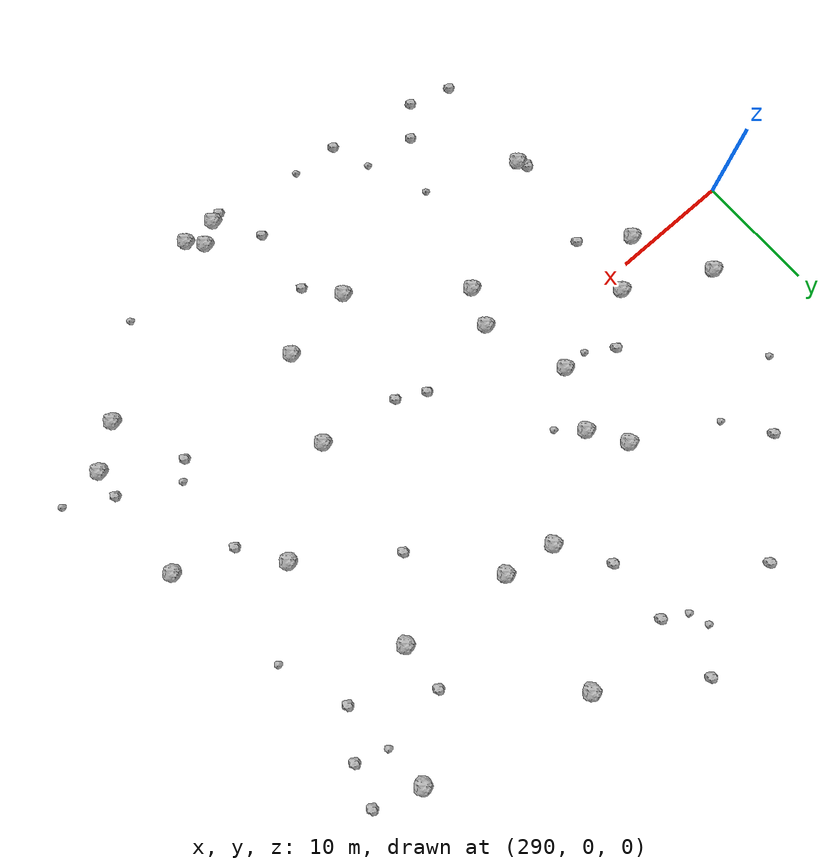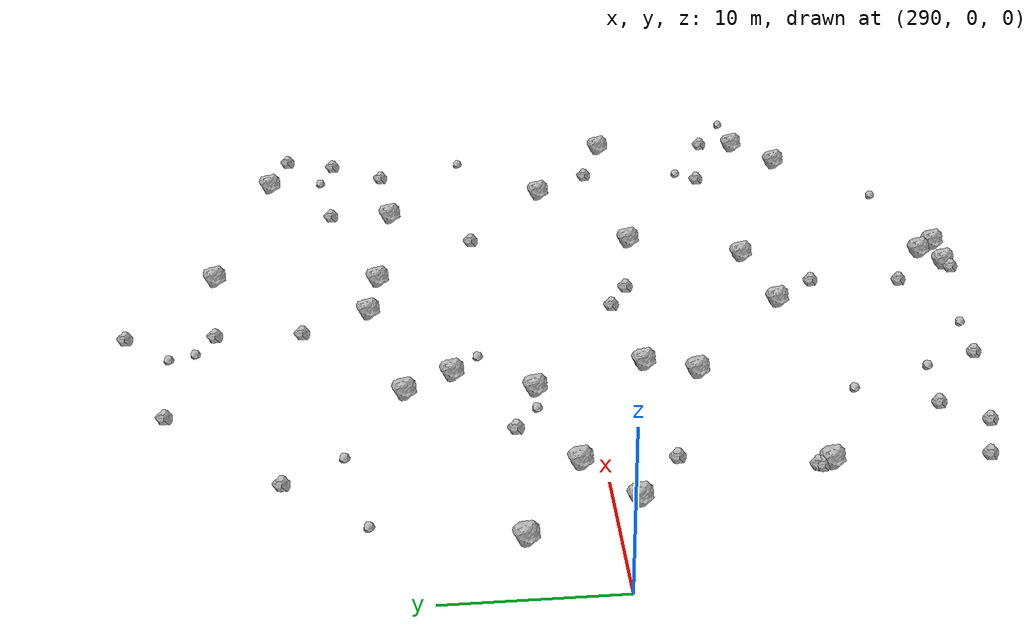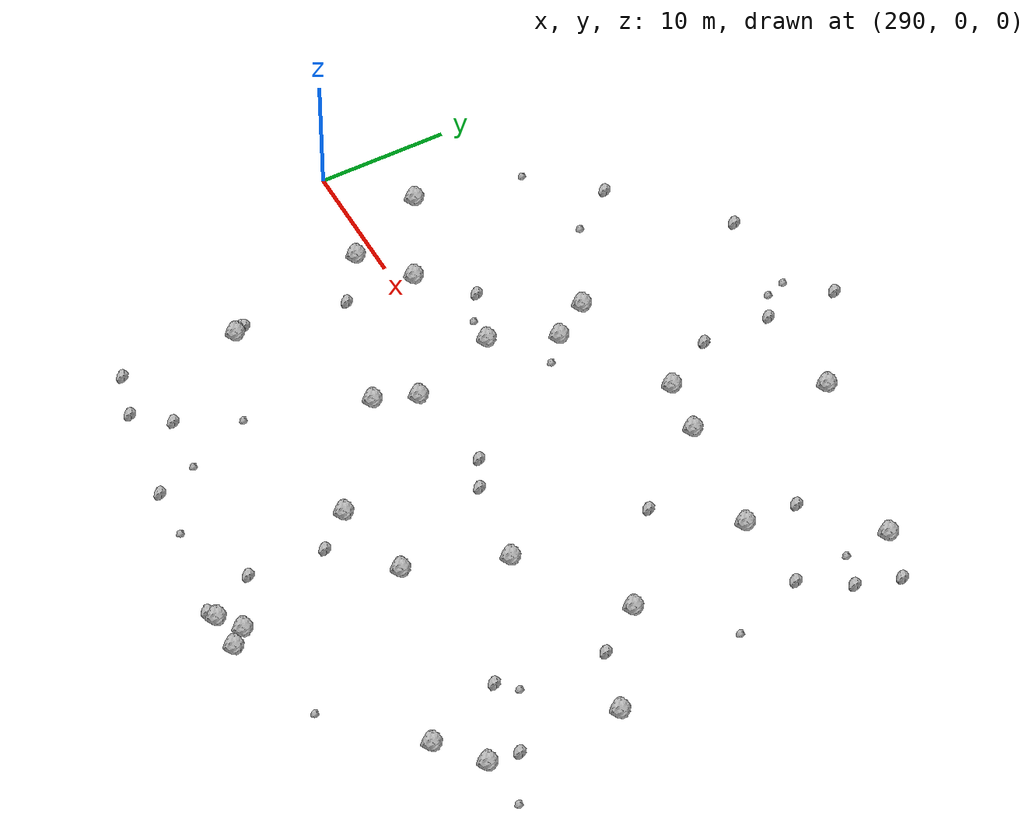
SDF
<sdf version="1.6">
 <world name="default">
  <include><uri>model://sun</uri></include>
  <model name="rock1_8_3">
   <include><uri>model://rock1</uri><pose>325.1915038183015 22.888082743973996 0.5 0 0 0</pose></include>
  </model>
  <model name="rock1_8_4">
   <include><uri>model://rock1</uri><pose>338.830382243131 19.729915822019557 0.5 0 0 0</pose></include>
  </model>
  <model name="rock1_8_5">
   <include><uri>model://rock1</uri><pose>312.05545087012746 8.094520764630225 0.5 0 0 0</pose></include>
  </model>
  <model name="rock1_8_6">
   <include><uri>model://rock1</uri><pose>336.0433704368544 0.8171400967337625 0.5 0 0 0</pose></include>
  </model>
  <model name="rock1_8_7">
   <include><uri>model://rock1</uri><pose>311.00896282621454 -6.6177755214381975 0.5 0 0 0</pose></include>
  </model>
  <model name="rock1_8_8">
   <include><uri>model://rock1</uri><pose>295.1191280224322 5.026669832028517 0.5 0 0 0</pose></include>
  </model>
  <model name="rock1_8_9">
   <include><uri>model://rock1</uri><pose>309.8459335343695 3.282439257857405 0.5 0 0 0</pose></include>
  </model>
  <model name="rock1_8_10">
   <include><uri>model://rock1</uri><pose>319.16483023443936 -13.060941604001616 0.5 0 0 0</pose></include>
  </model>
  <model name="rock1_8_11">
   <include><uri>model://rock1</uri><pose>325.5148616328047 -11.84580621359958 0.5 0 0 0</pose></include>
  </model>
  <model name="rock1_8_12">
   <include><uri>model://rock1</uri><pose>326.01978969670904 -24.980631585781303 0.5 0 0 0</pose></include>
  </model>
  <model name="rock1_8_13">
   <include><uri>model://rock1</uri><pose>300.7069691777286 -12.560123126250286 0.5 0 0 0</pose></include>
  </model>
  <model name="rock1_8_14">
   <include><uri>model://rock1</uri><pose>343.2188992653833 -4.244354372242022 0.5 0 0 0</pose></include>
  </model>
  <model name="rock1_8_15">
   <include><uri>model://rock1</uri><pose>324.2170372052479 12.334304809737674 0.5 0 0 0</pose></include>
  </model>
  <model name="rock1_8_16">
   <include><uri>model://rock1</uri><pose>323.23222306196976 -24.969582061854776 0.5 0 0 0</pose></include>
  </model>
  <model name="rock1_8_17">
   <include><uri>model://rock1</uri><pose>319.99577598864096 12.990704354367715 0.5 0 0 0</pose></include>
  </model>
  <model name="rock1_8_18">
   <include><uri>model://rock1</uri><pose>312.243213953115 -3.5159082546591023 0.5 0 0 0</pose></include>
  </model>
  <model name="rock1_8_19">
   <include><uri>model://rock1</uri><pose>310.1835212332316 11.002557846008415 0.5 0 0 0</pose></include>
  </model>
  <model name="rock1_8_20">
   <include><uri>model://rock1</uri><pose>328.2071114304373 -4.599407181901903 0.5 0 0 0</pose></include>
  </model>
  <model name="rock1_8_21">
   <include><uri>model://rock1</uri><pose>333.3333137534874 11.345090554975116 0.5 0 0 0</pose></include>
  </model>
  <model name="rock1_8_22">
   <include><uri>model://rock1</uri><pose>298.12929454179476 -1.4142647772899828 0.5 0 0 0</pose></include>
  </model>
  <model name="rock1_8_23">
   <include><uri>model://rock1</uri><pose>339.59187075648606 -16.74316067423345 0.5 0 0 0</pose></include>
  </model>
  <model name="rock1_8_24">
   <include><uri>model://rock1</uri><pose>324.9496833301592 -23.772007073795187 0.5 0 0 0</pose></include>
  </model>
  <model name="rock1_8_25">
   <include><uri>model://rock1</uri><pose>301.95085651517144 1.426592224579327 0.5 0 0 0</pose></include>
  </model>
  <model name="rock1_8_26">
   <include><uri>model://rock1</uri><pose>342.76059889623315 -14.183242551212544 0.5 0 0 0</pose></include>
  </model>
  <model name="rock2_8_0">
   <include><uri>model://rock2</uri><pose>321.385736168448 -15.680705716219993 0.3 0 0 0</pose></include>
  </model>
  <model name="rock2_8_1">
   <include><uri>model://rock2</uri><pose>328.9772828623374 5.998016939238319 0.3 0 0 0</pose></include>
  </model>
  <model name="rock2_8_2">
   <include><uri>model://rock2</uri><pose>300.21803251137817 -11.891184733519037 0.3 0 0 0</pose></include>
  </model>
  <model name="rock2_8_3">
   <include><uri>model://rock2</uri><pose>317.4927778930331 17.108588531057784 0.3 0 0 0</pose></include>
  </model>
  <model name="rock2_8_4">
   <include><uri>model://rock2</uri><pose>300.4704059485783 -21.519186355542338 0.3 0 0 0</pose></include>
  </model>
  <model name="rock2_8_5">
   <include><uri>model://rock2</uri><pose>301.0651248987863 17.95982173467292 0.3 0 0 0</pose></include>
  </model>
  <model name="rock2_8_6">
   <include><uri>model://rock2</uri><pose>322.392274907082 -25.2753678882041 0.3 0 0 0</pose></include>
  </model>
  <model name="rock2_8_7">
   <include><uri>model://rock2</uri><pose>317.6194939954401 22.463544857646617 0.3 0 0 0</pose></include>
  </model>
  <model name="rock2_8_8">
   <include><uri>model://rock2</uri><pose>305.99878014763163 -20.089087426334643 0.3 0 0 0</pose></include>
  </model>
  <model name="rock2_8_9">
   <include><uri>model://rock2</uri><pose>308.4671248137712 24.866633343028155 0.3 0 0 0</pose></include>
  </model>
  <model name="rock2_8_10">
   <include><uri>model://rock2</uri><pose>317.76032848681746 27.9695366940836 0.3 0 0 0</pose></include>
  </model>
  <model name="rock2_8_11">
   <include><uri>model://rock2</uri><pose>311.4648477214959 -23.709736424077732 0.3 0 0 0</pose></include>
  </model>
  <model name="rock2_8_12">
   <include><uri>model://rock2</uri><pose>341.5431743633282 15.322541779315785 0.3 0 0 0</pose></include>
  </model>
  <model name="rock2_8_13">
   <include><uri>model://rock2</uri><pose>301.7593469868968 -4.015477015986843 0.3 0 0 0</pose></include>
  </model>
  <model name="rock2_8_14">
   <include><uri>model://rock2</uri><pose>337.14447602334263 -10.676574489778972 0.3 0 0 0</pose></include>
  </model>
  <model name="rock2_8_15">
   <include><uri>model://rock2</uri><pose>319.3501190403324 -2.403474548397874 0.3 0 0 0</pose></include>
  </model>
  <model name="rock2_8_16">
   <include><uri>model://rock2</uri><pose>320.93389547321664 -21.411814327274747 0.3 0 0 0</pose></include>
  </model>
  <model name="rock2_8_17">
   <include><uri>model://rock2</uri><pose>312.17464292973057 -3.436626991152984 0.3 0 0 0</pose></include>
  </model>
  <model name="rock2_8_18">
   <include><uri>model://rock2</uri><pose>338.4444622406811 -2.702153959703761 0.3 0 0 0</pose></include>
  </model>
  <model name="rock2_8_19">
   <include><uri>model://rock2</uri><pose>342.97591974351315 -11.843627255312224 0.3 0 0 0</pose></include>
  </model>
  <model name="rock2_8_20">
   <include><uri>model://rock2</uri><pose>300.3192152146913 -11.68249110408198 0.3 0 0 0</pose></include>
  </model>
  <model name="rock2_8_21">
   <include><uri>model://rock2</uri><pose>339.33884114578734 11.88864441527786 0.3 0 0 0</pose></include>
  </model>
  <model name="rock2_8_22">
   <include><uri>model://rock2</uri><pose>305.5531306539156 4.741484036899003 0.3 0 0 0</pose></include>
  </model>
  <model name="rock2_8_23">
   <include><uri>model://rock2</uri><pose>342.5793758737529 18.56941274798858 0.3 0 0 0</pose></include>
  </model>
  <model name="rock2_8_24">
   <include><uri>model://rock2</uri><pose>333.5375355079838 15.384276844259553 0.3 0 0 0</pose></include>
  </model>
  <model name="rock2_8_25">
   <include><uri>model://rock2</uri><pose>303.9278652069831 -22.533497698074065 0.3 0 0 0</pose></include>
  </model>
  <model name="rock2_8_26">
   <include><uri>model://rock2</uri><pose>321.65732683809927 -3.5887146095254394 0.3 0 0 0</pose></include>
  </model>
  <model name="rock3_8_0">
   <include><uri>model://rock3</uri><pose>315.69330060174036 23.52828480109521 0.2 0 0 0</pose></include>
  </model>
  <model name="rock3_8_1">
   <include><uri>model://rock3</uri><pose>313.8508594094413 6.42214251013273 0.2 0 0 0</pose></include>
  </model>
  <model name="rock3_8_2">
   <include><uri>model://rock3</uri><pose>338.3299502001152 -9.388047058150242 0.2 0 0 0</pose></include>
  </model>
  <model name="rock3_8_3">
   <include><uri>model://rock3</uri><pose>296.7656429844437 13.227437854299367 0.2 0 0 0</pose></include>
  </model>
  <model name="rock3_8_4">
   <include><uri>model://rock3</uri><pose>341.37079156965314 6.219501877782818 0.2 0 0 0</pose></include>
  </model>
  <model name="rock3_8_5">
   <include><uri>model://rock3</uri><pose>315.1617160992608 25.089778971026107 0.2 0 0 0</pose></include>
  </model>
  <model name="rock3_8_6">
   <include><uri>model://rock3</uri><pose>310.2910573119602 -20.573577386789673 0.2 0 0 0</pose></include>
  </model>
  <model name="rock3_8_7">
   <include><uri>model://rock3</uri><pose>346.58535061499623 -13.890970080161196 0.2 0 0 0</pose></include>
  </model>
  <model name="rock3_8_8">
   <include><uri>model://rock3</uri><pose>307.7163462342674 3.3217623425241456 0.2 0 0 0</pose></include>
  </model>
  <model name="rock3_8_9">
   <include><uri>model://rock3</uri><pose>303.4706433426354 14.503955393591887 0.2 0 0 0</pose></include>
  </model>
  <model name="rock3_8_10">
   <include><uri>model://rock3</uri><pose>308.16933361299806 -15.590312067452354 0.2 0 0 0</pose></include>
  </model>
  <model name="rock3_8_11">
   <include><uri>model://rock3</uri><pose>333.54708297531624 -22.58302988314902 0.2 0 0 0</pose></include>
  </model>
  <model name="rock3_8_12">
   <include><uri>model://rock3</uri><pose>315.29261567221755 -23.964395801334625 0.2 0 0 0</pose></include>
  </model>
  <model name="rock3_8_13">
   <include><uri>model://rock3</uri><pose>339.0265191946174 16.136633755392396 0.2 0 0 0</pose></include>
  </model>
 </world>
</sdf>
